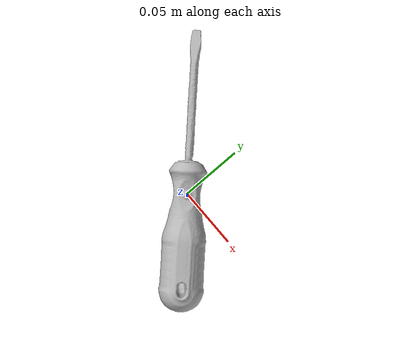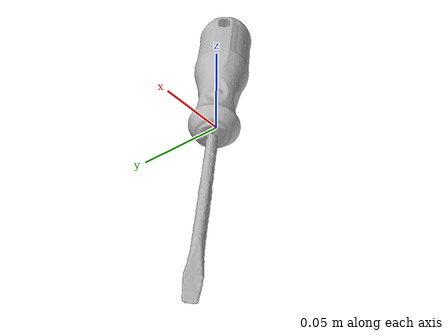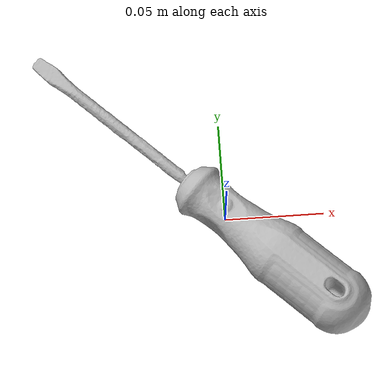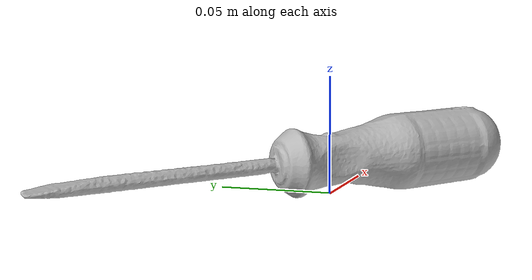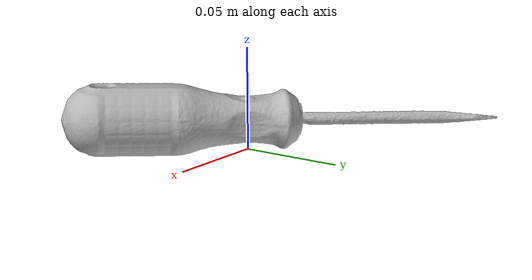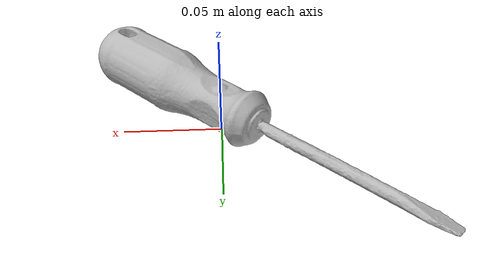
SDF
<?xml version='1.0'?>
<sdf version="1.4">
  <model name="flat_screwdriver">
    <static>false</static>
    <link name="link">
      <inertial>
        <pose>0.023228351441964466 -0.02270556071884342 0.016179821688211804 -1.6854651662970055 -1.2285699396956902 0.9119711789660342</pose>
        <mass>7.621626182656017e-05</mass>
        <inertia>
          <ixx>1.0455872762990073e-07</ixx>
          <ixy>1.0670086779981185e-23</ixy>
          <ixz>1.0373355042567683e-23</ixz>
          <iyy>1.0453551341148406e-07</iyy>
          <iyz>2.3207624197120762e-23</iyz>
          <izz>8.509661183314494e-09</izz>
        </inertia>
      </inertial>
      <collision name="collision">
        <geometry>
          <mesh>
            <!-- Use a downsampled mesh for collisions -->
            <uri>model://044_flat_screwdriver/google_16k/044_flat_screwdriver.obj</uri>
            </mesh>
        </geometry>
        <surface>
          <friction>
            <ode>
              <mu>0.9</mu>
              <mu2>0.9</mu2>
            </ode>
          </friction>
          <contact>
            <ode>
              <kp>1000000000000.0</kp>
              <kd>1</kd>
              <min_depth>0.0001</min_depth>
              <max_vel>0.01</max_vel>
            </ode>
          </contact>
          <bounce>
            <restitution_coefficient>0.1</restitution_coefficient>
            <threshold>1000.0</threshold>
          </bounce>
        </surface>
      </collision>
      <visual name="visual">
        <geometry>
          <mesh>
            <uri>model://044_flat_screwdriver/google_16k/044_flat_screwdriver.dae</uri>
            </mesh>
        </geometry>
      </visual>
    </link>
  </model>
</sdf>
